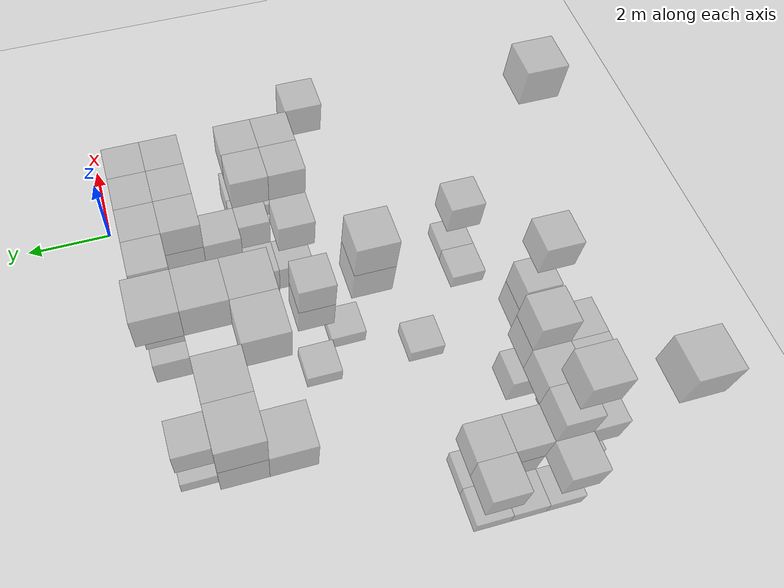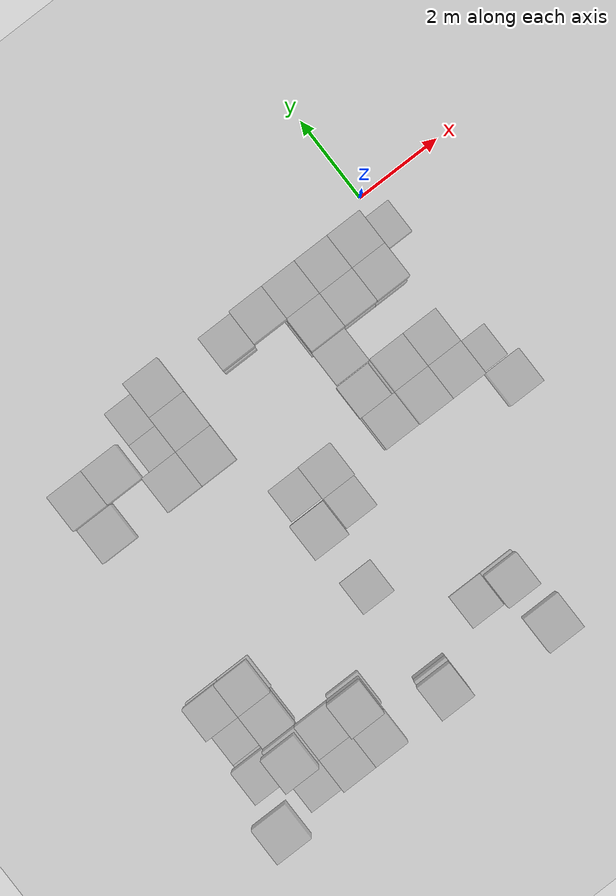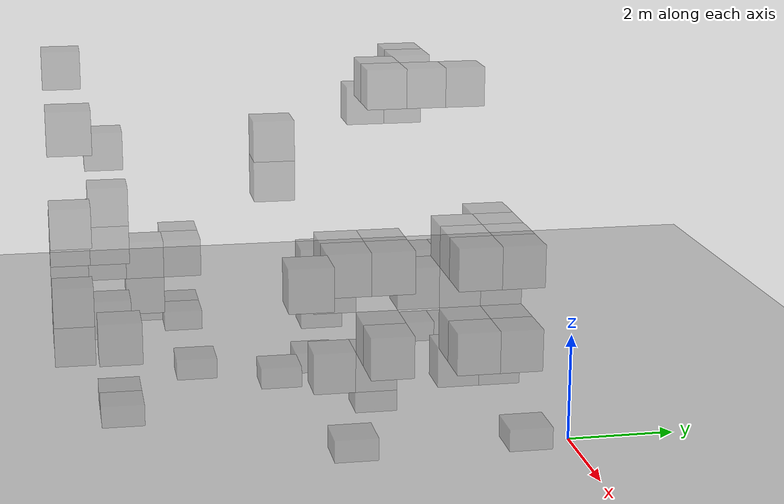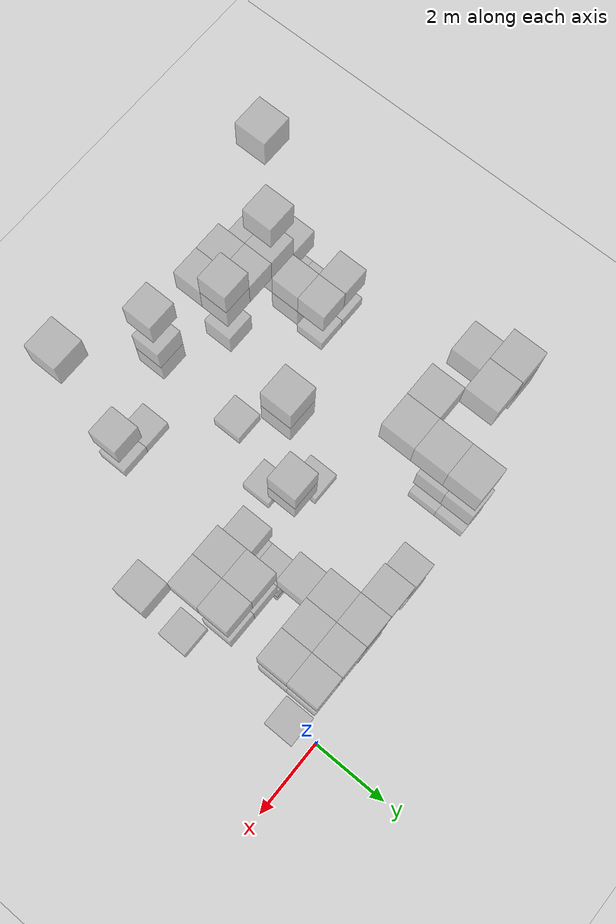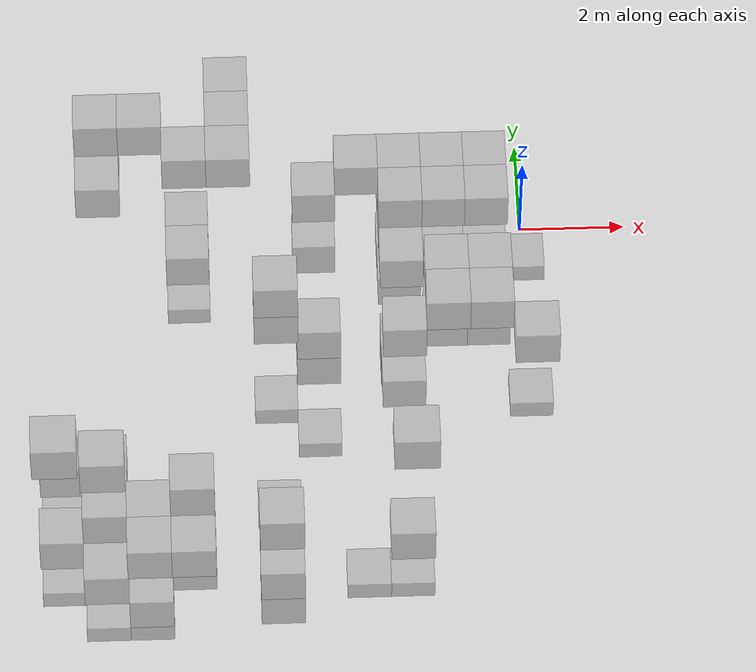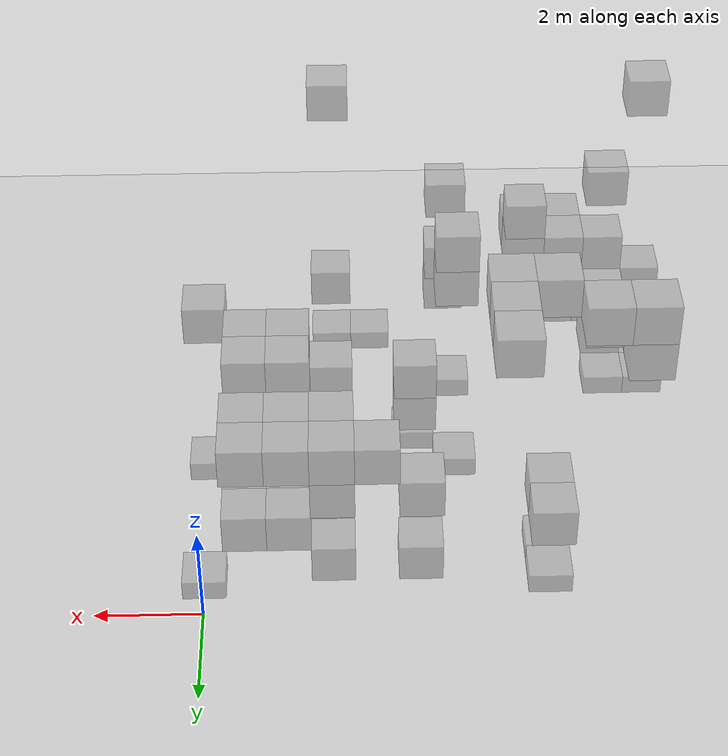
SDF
<sdf version="1.6">
 <world name="cramped_environment">
  <include><uri>model://sun</uri></include>
  <include><uri>model://ground_plane</uri></include>
  <model name="obs_1">
   <static>true</static>
   <pose>-8.00 -2.40 4.80 0 0 0</pose>
   <link name="link">
    <collision name="collision"><geometry><box><size>0.80 0.80 0.80</size></box></geometry></collision>
    <visual name="visual">
     <transparency>0.5</transparency>
     <geometry><box><size>0.80 0.80 0.80</size></box></geometry>
     <material>
      <script><name>Gazebo/Grey</name><uri>file://media/materials/scripts/gazebo.material</uri></script>
     </material>
    </visual>
   </link>
  </model>
  <model name="obs_5">
   <static>true</static>
   <pose>-6.40 -1.60 0.00 0 0 0</pose>
   <link name="link">
    <collision name="collision"><geometry><box><size>0.80 0.80 0.80</size></box></geometry></collision>
    <visual name="visual">
     <transparency>0.5</transparency>
     <geometry><box><size>0.80 0.80 0.80</size></box></geometry>
     <material>
      <script><name>Gazebo/Grey</name><uri>file://media/materials/scripts/gazebo.material</uri></script>
     </material>
    </visual>
   </link>
  </model>
  <model name="obs_6">
   <static>true</static>
   <pose>-6.40 -0.80 0.00 0 0 0</pose>
   <link name="link">
    <collision name="collision"><geometry><box><size>0.80 0.80 0.80</size></box></geometry></collision>
    <visual name="visual">
     <transparency>0.5</transparency>
     <geometry><box><size>0.80 0.80 0.80</size></box></geometry>
     <material>
      <script><name>Gazebo/Grey</name><uri>file://media/materials/scripts/gazebo.material</uri></script>
     </material>
    </visual>
   </link>
  </model>
  <model name="obs_7">
   <static>true</static>
   <pose>-8.00 -1.60 5.60 0 0 0</pose>
   <link name="link">
    <collision name="collision"><geometry><box><size>0.80 0.80 0.80</size></box></geometry></collision>
    <visual name="visual">
     <transparency>0.5</transparency>
     <geometry><box><size>0.80 0.80 0.80</size></box></geometry>
     <material>
      <script><name>Gazebo/Grey</name><uri>file://media/materials/scripts/gazebo.material</uri></script>
     </material>
    </visual>
   </link>
  </model>
  <model name="obs_8">
   <static>true</static>
   <pose>-8.00 -8.00 2.40 0 0 0</pose>
   <link name="link">
    <collision name="collision"><geometry><box><size>0.80 0.80 0.80</size></box></geometry></collision>
    <visual name="visual">
     <transparency>0.5</transparency>
     <geometry><box><size>0.80 0.80 0.80</size></box></geometry>
     <material>
      <script><name>Gazebo/Grey</name><uri>file://media/materials/scripts/gazebo.material</uri></script>
     </material>
    </visual>
   </link>
  </model>
  <model name="obs_10">
   <static>true</static>
   <pose>-6.40 -8.00 0.80 0 0 0</pose>
   <link name="link">
    <collision name="collision"><geometry><box><size>0.80 0.80 0.80</size></box></geometry></collision>
    <visual name="visual">
     <transparency>0.5</transparency>
     <geometry><box><size>0.80 0.80 0.80</size></box></geometry>
     <material>
      <script><name>Gazebo/Grey</name><uri>file://media/materials/scripts/gazebo.material</uri></script>
     </material>
    </visual>
   </link>
  </model>
  <model name="obs_11">
   <static>true</static>
   <pose>-5.60 -2.40 5.60 0 0 0</pose>
   <link name="link">
    <collision name="collision"><geometry><box><size>0.80 0.80 0.80</size></box></geometry></collision>
    <visual name="visual">
     <transparency>0.5</transparency>
     <geometry><box><size>0.80 0.80 0.80</size></box></geometry>
     <material>
      <script><name>Gazebo/Grey</name><uri>file://media/materials/scripts/gazebo.material</uri></script>
     </material>
    </visual>
   </link>
  </model>
  <model name="obs_16">
   <static>true</static>
   <pose>-4.00 -0.80 0.80 0 0 0</pose>
   <link name="link">
    <collision name="collision"><geometry><box><size>0.80 0.80 0.80</size></box></geometry></collision>
    <visual name="visual">
     <transparency>0.5</transparency>
     <geometry><box><size>0.80 0.80 0.80</size></box></geometry>
     <material>
      <script><name>Gazebo/Grey</name><uri>file://media/materials/scripts/gazebo.material</uri></script>
     </material>
    </visual>
   </link>
  </model>
  <model name="obs_17">
   <static>true</static>
   <pose>-4.80 -4.80 4.80 0 0 0</pose>
   <link name="link">
    <collision name="collision"><geometry><box><size>0.80 0.80 0.80</size></box></geometry></collision>
    <visual name="visual">
     <transparency>0.5</transparency>
     <geometry><box><size>0.80 0.80 0.80</size></box></geometry>
     <material>
      <script><name>Gazebo/Grey</name><uri>file://media/materials/scripts/gazebo.material</uri></script>
     </material>
    </visual>
   </link>
  </model>
  <model name="obs_27">
   <static>true</static>
   <pose>-1.60 -0.80 1.60 0 0 0</pose>
   <link name="link">
    <collision name="collision"><geometry><box><size>0.80 0.80 0.80</size></box></geometry></collision>
    <visual name="visual">
     <transparency>0.5</transparency>
     <geometry><box><size>0.80 0.80 0.80</size></box></geometry>
     <material>
      <script><name>Gazebo/Grey</name><uri>file://media/materials/scripts/gazebo.material</uri></script>
     </material>
    </visual>
   </link>
  </model>
  <model name="obs_28">
   <static>true</static>
   <pose>-0.80 -0.80 1.60 0 0 0</pose>
   <link name="link">
    <collision name="collision"><geometry><box><size>0.80 0.80 0.80</size></box></geometry></collision>
    <visual name="visual">
     <transparency>0.5</transparency>
     <geometry><box><size>0.80 0.80 0.80</size></box></geometry>
     <material>
      <script><name>Gazebo/Grey</name><uri>file://media/materials/scripts/gazebo.material</uri></script>
     </material>
    </visual>
   </link>
  </model>
  <model name="obs_29">
   <static>true</static>
   <pose>-1.60 -1.60 1.60 0 0 0</pose>
   <link name="link">
    <collision name="collision"><geometry><box><size>0.80 0.80 0.80</size></box></geometry></collision>
    <visual name="visual">
     <transparency>0.5</transparency>
     <geometry><box><size>0.80 0.80 0.80</size></box></geometry>
     <material>
      <script><name>Gazebo/Grey</name><uri>file://media/materials/scripts/gazebo.material</uri></script>
     </material>
    </visual>
   </link>
  </model>
  <model name="obs_30">
   <static>true</static>
   <pose>-0.80 -1.60 1.60 0 0 0</pose>
   <link name="link">
    <collision name="collision"><geometry><box><size>0.80 0.80 0.80</size></box></geometry></collision>
    <visual name="visual">
     <transparency>0.5</transparency>
     <geometry><box><size>0.80 0.80 0.80</size></box></geometry>
     <material>
      <script><name>Gazebo/Grey</name><uri>file://media/materials/scripts/gazebo.material</uri></script>
     </material>
    </visual>
   </link>
  </model>
  <model name="obs_33">
   <static>true</static>
   <pose>-8.80 -6.40 0.00 0 0 0</pose>
   <link name="link">
    <collision name="collision"><geometry><box><size>0.80 0.80 0.80</size></box></geometry></collision>
    <visual name="visual">
     <transparency>0.5</transparency>
     <geometry><box><size>0.80 0.80 0.80</size></box></geometry>
     <material>
      <script><name>Gazebo/Grey</name><uri>file://media/materials/scripts/gazebo.material</uri></script>
     </material>
    </visual>
   </link>
  </model>
  <model name="obs_35">
   <static>true</static>
   <pose>-2.40 -4.00 0.80 0 0 0</pose>
   <link name="link">
    <collision name="collision"><geometry><box><size>0.80 0.80 0.80</size></box></geometry></collision>
    <visual name="visual">
     <transparency>0.5</transparency>
     <geometry><box><size>0.80 0.80 0.80</size></box></geometry>
     <material>
      <script><name>Gazebo/Grey</name><uri>file://media/materials/scripts/gazebo.material</uri></script>
     </material>
    </visual>
   </link>
  </model>
  <model name="obs_40">
   <static>true</static>
   <pose>-2.40 -3.20 0.80 0 0 0</pose>
   <link name="link">
    <collision name="collision"><geometry><box><size>0.80 0.80 0.80</size></box></geometry></collision>
    <visual name="visual">
     <transparency>0.5</transparency>
     <geometry><box><size>0.80 0.80 0.80</size></box></geometry>
     <material>
      <script><name>Gazebo/Grey</name><uri>file://media/materials/scripts/gazebo.material</uri></script>
     </material>
    </visual>
   </link>
  </model>
  <model name="obs_49">
   <static>true</static>
   <pose>-7.20 -8.80 0.80 0 0 0</pose>
   <link name="link">
    <collision name="collision"><geometry><box><size>0.80 0.80 0.80</size></box></geometry></collision>
    <visual name="visual">
     <transparency>0.5</transparency>
     <geometry><box><size>0.80 0.80 0.80</size></box></geometry>
     <material>
      <script><name>Gazebo/Grey</name><uri>file://media/materials/scripts/gazebo.material</uri></script>
     </material>
    </visual>
   </link>
  </model>
  <model name="obs_61">
   <static>true</static>
   <pose>-6.40 -2.40 5.60 0 0 0</pose>
   <link name="link">
    <collision name="collision"><geometry><box><size>0.80 0.80 0.80</size></box></geometry></collision>
    <visual name="visual">
     <transparency>0.5</transparency>
     <geometry><box><size>0.80 0.80 0.80</size></box></geometry>
     <material>
      <script><name>Gazebo/Grey</name><uri>file://media/materials/scripts/gazebo.material</uri></script>
     </material>
    </visual>
   </link>
  </model>
  <model name="obs_62">
   <static>true</static>
   <pose>-4.80 -8.80 1.60 0 0 0</pose>
   <link name="link">
    <collision name="collision"><geometry><box><size>0.80 0.80 0.80</size></box></geometry></collision>
    <visual name="visual">
     <transparency>0.5</transparency>
     <geometry><box><size>0.80 0.80 0.80</size></box></geometry>
     <material>
      <script><name>Gazebo/Grey</name><uri>file://media/materials/scripts/gazebo.material</uri></script>
     </material>
    </visual>
   </link>
  </model>
  <model name="obs_64">
   <static>true</static>
   <pose>-6.40 -8.80 2.40 0 0 0</pose>
   <link name="link">
    <collision name="collision"><geometry><box><size>0.80 0.80 0.80</size></box></geometry></collision>
    <visual name="visual">
     <transparency>0.5</transparency>
     <geometry><box><size>0.80 0.80 0.80</size></box></geometry>
     <material>
      <script><name>Gazebo/Grey</name><uri>file://media/materials/scripts/gazebo.material</uri></script>
     </material>
    </visual>
   </link>
  </model>
  <model name="obs_67">
   <static>true</static>
   <pose>-6.40 -8.00 3.20 0 0 0</pose>
   <link name="link">
    <collision name="collision"><geometry><box><size>0.80 0.80 0.80</size></box></geometry></collision>
    <visual name="visual">
     <transparency>0.5</transparency>
     <geometry><box><size>0.80 0.80 0.80</size></box></geometry>
     <material>
      <script><name>Gazebo/Grey</name><uri>file://media/materials/scripts/gazebo.material</uri></script>
     </material>
    </visual>
   </link>
  </model>
  <model name="obs_77">
   <static>true</static>
   <pose>-2.40 -0.80 0.80 0 0 0</pose>
   <link name="link">
    <collision name="collision"><geometry><box><size>0.80 0.80 0.80</size></box></geometry></collision>
    <visual name="visual">
     <transparency>0.5</transparency>
     <geometry><box><size>0.80 0.80 0.80</size></box></geometry>
     <material>
      <script><name>Gazebo/Grey</name><uri>file://media/materials/scripts/gazebo.material</uri></script>
     </material>
    </visual>
   </link>
  </model>
  <model name="obs_78">
   <static>true</static>
   <pose>-2.40 -1.60 0.80 0 0 0</pose>
   <link name="link">
    <collision name="collision"><geometry><box><size>0.80 0.80 0.80</size></box></geometry></collision>
    <visual name="visual">
     <transparency>0.5</transparency>
     <geometry><box><size>0.80 0.80 0.80</size></box></geometry>
     <material>
      <script><name>Gazebo/Grey</name><uri>file://media/materials/scripts/gazebo.material</uri></script>
     </material>
    </visual>
   </link>
  </model>
  <model name="obs_87">
   <static>true</static>
   <pose>-8.00 -8.80 0.00 0 0 0</pose>
   <link name="link">
    <collision name="collision"><geometry><box><size>0.80 0.80 0.80</size></box></geometry></collision>
    <visual name="visual">
     <transparency>0.5</transparency>
     <geometry><box><size>0.80 0.80 0.80</size></box></geometry>
     <material>
      <script><name>Gazebo/Grey</name><uri>file://media/materials/scripts/gazebo.material</uri></script>
     </material>
    </visual>
   </link>
  </model>
  <model name="obs_120">
   <static>true</static>
   <pose>-2.40 -2.40 2.40 0 0 0</pose>
   <link name="link">
    <collision name="collision"><geometry><box><size>0.80 0.80 0.80</size></box></geometry></collision>
    <visual name="visual">
     <transparency>0.5</transparency>
     <geometry><box><size>0.80 0.80 0.80</size></box></geometry>
     <material>
      <script><name>Gazebo/Grey</name><uri>file://media/materials/scripts/gazebo.material</uri></script>
     </material>
    </visual>
   </link>
  </model>
  <model name="obs_121">
   <static>true</static>
   <pose>-2.40 -0.80 3.20 0 0 0</pose>
   <link name="link">
    <collision name="collision"><geometry><box><size>0.80 0.80 0.80</size></box></geometry></collision>
    <visual name="visual">
     <transparency>0.5</transparency>
     <geometry><box><size>0.80 0.80 0.80</size></box></geometry>
     <material>
      <script><name>Gazebo/Grey</name><uri>file://media/materials/scripts/gazebo.material</uri></script>
     </material>
    </visual>
   </link>
  </model>
  <model name="obs_122">
   <static>true</static>
   <pose>-2.40 -1.60 3.20 0 0 0</pose>
   <link name="link">
    <collision name="collision"><geometry><box><size>0.80 0.80 0.80</size></box></geometry></collision>
    <visual name="visual">
     <transparency>0.5</transparency>
     <geometry><box><size>0.80 0.80 0.80</size></box></geometry>
     <material>
      <script><name>Gazebo/Grey</name><uri>file://media/materials/scripts/gazebo.material</uri></script>
     </material>
    </visual>
   </link>
  </model>
  <model name="obs_123">
   <static>true</static>
   <pose>-2.40 -8.00 0.00 0 0 0</pose>
   <link name="link">
    <collision name="collision"><geometry><box><size>0.80 0.80 0.80</size></box></geometry></collision>
    <visual name="visual">
     <transparency>0.5</transparency>
     <geometry><box><size>0.80 0.80 0.80</size></box></geometry>
     <material>
      <script><name>Gazebo/Grey</name><uri>file://media/materials/scripts/gazebo.material</uri></script>
     </material>
    </visual>
   </link>
  </model>
  <model name="obs_124">
   <static>true</static>
   <pose>-7.20 -1.60 5.60 0 0 0</pose>
   <link name="link">
    <collision name="collision"><geometry><box><size>0.80 0.80 0.80</size></box></geometry></collision>
    <visual name="visual">
     <transparency>0.5</transparency>
     <geometry><box><size>0.80 0.80 0.80</size></box></geometry>
     <material>
      <script><name>Gazebo/Grey</name><uri>file://media/materials/scripts/gazebo.material</uri></script>
     </material>
    </visual>
   </link>
  </model>
  <model name="obs_126">
   <static>true</static>
   <pose>-7.20 -8.00 2.40 0 0 0</pose>
   <link name="link">
    <collision name="collision"><geometry><box><size>0.80 0.80 0.80</size></box></geometry></collision>
    <visual name="visual">
     <transparency>0.5</transparency>
     <geometry><box><size>0.80 0.80 0.80</size></box></geometry>
     <material>
      <script><name>Gazebo/Grey</name><uri>file://media/materials/scripts/gazebo.material</uri></script>
     </material>
    </visual>
   </link>
  </model>
  <model name="obs_132">
   <static>true</static>
   <pose>-8.00 -6.40 0.00 0 0 0</pose>
   <link name="link">
    <collision name="collision"><geometry><box><size>0.80 0.80 0.80</size></box></geometry></collision>
    <visual name="visual">
     <transparency>0.5</transparency>
     <geometry><box><size>0.80 0.80 0.80</size></box></geometry>
     <material>
      <script><name>Gazebo/Grey</name><uri>file://media/materials/scripts/gazebo.material</uri></script>
     </material>
    </visual>
   </link>
  </model>
  <model name="obs_156">
   <static>true</static>
   <pose>-1.60 -3.20 1.60 0 0 0</pose>
   <link name="link">
    <collision name="collision"><geometry><box><size>0.80 0.80 0.80</size></box></geometry></collision>
    <visual name="visual">
     <transparency>0.5</transparency>
     <geometry><box><size>0.80 0.80 0.80</size></box></geometry>
     <material>
      <script><name>Gazebo/Grey</name><uri>file://media/materials/scripts/gazebo.material</uri></script>
     </material>
    </visual>
   </link>
  </model>
  <model name="obs_158">
   <static>true</static>
   <pose>-0.80 -3.20 1.60 0 0 0</pose>
   <link name="link">
    <collision name="collision"><geometry><box><size>0.80 0.80 0.80</size></box></geometry></collision>
    <visual name="visual">
     <transparency>0.5</transparency>
     <geometry><box><size>0.80 0.80 0.80</size></box></geometry>
     <material>
      <script><name>Gazebo/Grey</name><uri>file://media/materials/scripts/gazebo.material</uri></script>
     </material>
    </visual>
   </link>
  </model>
  <model name="obs_163">
   <static>true</static>
   <pose>-8.80 -8.00 0.00 0 0 0</pose>
   <link name="link">
    <collision name="collision"><geometry><box><size>0.80 0.80 0.80</size></box></geometry></collision>
    <visual name="visual">
     <transparency>0.5</transparency>
     <geometry><box><size>0.80 0.80 0.80</size></box></geometry>
     <material>
      <script><name>Gazebo/Grey</name><uri>file://media/materials/scripts/gazebo.material</uri></script>
     </material>
    </visual>
   </link>
  </model>
  <model name="obs_174">
   <static>true</static>
   <pose>-8.00 -1.60 4.80 0 0 0</pose>
   <link name="link">
    <collision name="collision"><geometry><box><size>0.80 0.80 0.80</size></box></geometry></collision>
    <visual name="visual">
     <transparency>0.5</transparency>
     <geometry><box><size>0.80 0.80 0.80</size></box></geometry>
     <material>
      <script><name>Gazebo/Grey</name><uri>file://media/materials/scripts/gazebo.material</uri></script>
     </material>
    </visual>
   </link>
  </model>
  <model name="obs_175">
   <static>true</static>
   <pose>-8.00 -8.00 1.60 0 0 0</pose>
   <link name="link">
    <collision name="collision"><geometry><box><size>0.80 0.80 0.80</size></box></geometry></collision>
    <visual name="visual">
     <transparency>0.5</transparency>
     <geometry><box><size>0.80 0.80 0.80</size></box></geometry>
     <material>
      <script><name>Gazebo/Grey</name><uri>file://media/materials/scripts/gazebo.material</uri></script>
     </material>
    </visual>
   </link>
  </model>
  <model name="obs_181">
   <static>true</static>
   <pose>-2.40 -8.80 5.60 0 0 0</pose>
   <link name="link">
    <collision name="collision"><geometry><box><size>0.80 0.80 0.80</size></box></geometry></collision>
    <visual name="visual">
     <transparency>0.5</transparency>
     <geometry><box><size>0.80 0.80 0.80</size></box></geometry>
     <material>
      <script><name>Gazebo/Grey</name><uri>file://media/materials/scripts/gazebo.material</uri></script>
     </material>
    </visual>
   </link>
  </model>
  <model name="obs_183">
   <static>true</static>
   <pose>-8.00 -7.20 1.60 0 0 0</pose>
   <link name="link">
    <collision name="collision"><geometry><box><size>0.80 0.80 0.80</size></box></geometry></collision>
    <visual name="visual">
     <transparency>0.5</transparency>
     <geometry><box><size>0.80 0.80 0.80</size></box></geometry>
     <material>
      <script><name>Gazebo/Grey</name><uri>file://media/materials/scripts/gazebo.material</uri></script>
     </material>
    </visual>
   </link>
  </model>
  <model name="obs_184">
   <static>true</static>
   <pose>-5.60 -1.60 5.60 0 0 0</pose>
   <link name="link">
    <collision name="collision"><geometry><box><size>0.80 0.80 0.80</size></box></geometry></collision>
    <visual name="visual">
     <transparency>0.5</transparency>
     <geometry><box><size>0.80 0.80 0.80</size></box></geometry>
     <material>
      <script><name>Gazebo/Grey</name><uri>file://media/materials/scripts/gazebo.material</uri></script>
     </material>
    </visual>
   </link>
  </model>
  <model name="obs_185">
   <static>true</static>
   <pose>-5.60 -0.80 5.60 0 0 0</pose>
   <link name="link">
    <collision name="collision"><geometry><box><size>0.80 0.80 0.80</size></box></geometry></collision>
    <visual name="visual">
     <transparency>0.5</transparency>
     <geometry><box><size>0.80 0.80 0.80</size></box></geometry>
     <material>
      <script><name>Gazebo/Grey</name><uri>file://media/materials/scripts/gazebo.material</uri></script>
     </material>
    </visual>
   </link>
  </model>
  <model name="obs_187">
   <static>true</static>
   <pose>-4.80 -4.80 4.00 0 0 0</pose>
   <link name="link">
    <collision name="collision"><geometry><box><size>0.80 0.80 0.80</size></box></geometry></collision>
    <visual name="visual">
     <transparency>0.5</transparency>
     <geometry><box><size>0.80 0.80 0.80</size></box></geometry>
     <material>
      <script><name>Gazebo/Grey</name><uri>file://media/materials/scripts/gazebo.material</uri></script>
     </material>
    </visual>
   </link>
  </model>
  <model name="obs_193">
   <static>true</static>
   <pose>-3.20 -0.80 3.20 0 0 0</pose>
   <link name="link">
    <collision name="collision"><geometry><box><size>0.80 0.80 0.80</size></box></geometry></collision>
    <visual name="visual">
     <transparency>0.5</transparency>
     <geometry><box><size>0.80 0.80 0.80</size></box></geometry>
     <material>
      <script><name>Gazebo/Grey</name><uri>file://media/materials/scripts/gazebo.material</uri></script>
     </material>
    </visual>
   </link>
  </model>
  <model name="obs_194">
   <static>true</static>
   <pose>-3.20 -8.00 0.00 0 0 0</pose>
   <link name="link">
    <collision name="collision"><geometry><box><size>0.80 0.80 0.80</size></box></geometry></collision>
    <visual name="visual">
     <transparency>0.5</transparency>
     <geometry><box><size>0.80 0.80 0.80</size></box></geometry>
     <material>
      <script><name>Gazebo/Grey</name><uri>file://media/materials/scripts/gazebo.material</uri></script>
     </material>
    </visual>
   </link>
  </model>
  <model name="obs_200">
   <static>true</static>
   <pose>-4.00 -4.00 2.40 0 0 0</pose>
   <link name="link">
    <collision name="collision"><geometry><box><size>0.80 0.80 0.80</size></box></geometry></collision>
    <visual name="visual">
     <transparency>0.5</transparency>
     <geometry><box><size>0.80 0.80 0.80</size></box></geometry>
     <material>
      <script><name>Gazebo/Grey</name><uri>file://media/materials/scripts/gazebo.material</uri></script>
     </material>
    </visual>
   </link>
  </model>
  <model name="obs_212">
   <static>true</static>
   <pose>-1.60 -4.00 3.20 0 0 0</pose>
   <link name="link">
    <collision name="collision"><geometry><box><size>0.80 0.80 0.80</size></box></geometry></collision>
    <visual name="visual">
     <transparency>0.5</transparency>
     <geometry><box><size>0.80 0.80 0.80</size></box></geometry>
     <material>
      <script><name>Gazebo/Grey</name><uri>file://media/materials/scripts/gazebo.material</uri></script>
     </material>
    </visual>
   </link>
  </model>
  <model name="obs_213">
   <static>true</static>
   <pose>-0.80 -4.00 3.20 0 0 0</pose>
   <link name="link">
    <collision name="collision"><geometry><box><size>0.80 0.80 0.80</size></box></geometry></collision>
    <visual name="visual">
     <transparency>0.5</transparency>
     <geometry><box><size>0.80 0.80 0.80</size></box></geometry>
     <material>
      <script><name>Gazebo/Grey</name><uri>file://media/materials/scripts/gazebo.material</uri></script>
     </material>
    </visual>
   </link>
  </model>
  <model name="obs_215">
   <static>true</static>
   <pose>-2.40 -3.20 0.00 0 0 0</pose>
   <link name="link">
    <collision name="collision"><geometry><box><size>0.80 0.80 0.80</size></box></geometry></collision>
    <visual name="visual">
     <transparency>0.5</transparency>
     <geometry><box><size>0.80 0.80 0.80</size></box></geometry>
     <material>
      <script><name>Gazebo/Grey</name><uri>file://media/materials/scripts/gazebo.material</uri></script>
     </material>
    </visual>
   </link>
  </model>
  <model name="obs_221">
   <static>true</static>
   <pose>-7.20 -8.80 0.00 0 0 0</pose>
   <link name="link">
    <collision name="collision"><geometry><box><size>0.80 0.80 0.80</size></box></geometry></collision>
    <visual name="visual">
     <transparency>0.5</transparency>
     <geometry><box><size>0.80 0.80 0.80</size></box></geometry>
     <material>
      <script><name>Gazebo/Grey</name><uri>file://media/materials/scripts/gazebo.material</uri></script>
     </material>
    </visual>
   </link>
  </model>
  <model name="obs_222">
   <static>true</static>
   <pose>-8.80 -8.80 5.60 0 0 0</pose>
   <link name="link">
    <collision name="collision"><geometry><box><size>0.80 0.80 0.80</size></box></geometry></collision>
    <visual name="visual">
     <transparency>0.5</transparency>
     <geometry><box><size>0.80 0.80 0.80</size></box></geometry>
     <material>
      <script><name>Gazebo/Grey</name><uri>file://media/materials/scripts/gazebo.material</uri></script>
     </material>
    </visual>
   </link>
  </model>
  <model name="obs_230">
   <static>true</static>
   <pose>-6.40 -0.80 1.60 0 0 0</pose>
   <link name="link">
    <collision name="collision"><geometry><box><size>0.80 0.80 0.80</size></box></geometry></collision>
    <visual name="visual">
     <transparency>0.5</transparency>
     <geometry><box><size>0.80 0.80 0.80</size></box></geometry>
     <material>
      <script><name>Gazebo/Grey</name><uri>file://media/materials/scripts/gazebo.material</uri></script>
     </material>
    </visual>
   </link>
  </model>
  <model name="obs_231">
   <static>true</static>
   <pose>-6.40 -1.60 1.60 0 0 0</pose>
   <link name="link">
    <collision name="collision"><geometry><box><size>0.80 0.80 0.80</size></box></geometry></collision>
    <visual name="visual">
     <transparency>0.5</transparency>
     <geometry><box><size>0.80 0.80 0.80</size></box></geometry>
     <material>
      <script><name>Gazebo/Grey</name><uri>file://media/materials/scripts/gazebo.material</uri></script>
     </material>
    </visual>
   </link>
  </model>
  <model name="obs_232">
   <static>true</static>
   <pose>-8.00 -8.00 4.00 0 0 0</pose>
   <link name="link">
    <collision name="collision"><geometry><box><size>0.80 0.80 0.80</size></box></geometry></collision>
    <visual name="visual">
     <transparency>0.5</transparency>
     <geometry><box><size>0.80 0.80 0.80</size></box></geometry>
     <material>
      <script><name>Gazebo/Grey</name><uri>file://media/materials/scripts/gazebo.material</uri></script>
     </material>
    </visual>
   </link>
  </model>
  <model name="obs_233">
   <static>true</static>
   <pose>-4.80 -8.80 0.80 0 0 0</pose>
   <link name="link">
    <collision name="collision"><geometry><box><size>0.80 0.80 0.80</size></box></geometry></collision>
    <visual name="visual">
     <transparency>0.5</transparency>
     <geometry><box><size>0.80 0.80 0.80</size></box></geometry>
     <material>
      <script><name>Gazebo/Grey</name><uri>file://media/materials/scripts/gazebo.material</uri></script>
     </material>
    </visual>
   </link>
  </model>
  <model name="obs_235">
   <static>true</static>
   <pose>-6.40 -8.00 2.40 0 0 0</pose>
   <link name="link">
    <collision name="collision"><geometry><box><size>0.80 0.80 0.80</size></box></geometry></collision>
    <visual name="visual">
     <transparency>0.5</transparency>
     <geometry><box><size>0.80 0.80 0.80</size></box></geometry>
     <material>
      <script><name>Gazebo/Grey</name><uri>file://media/materials/scripts/gazebo.material</uri></script>
     </material>
    </visual>
   </link>
  </model>
  <model name="obs_243">
   <static>true</static>
   <pose>-4.00 -0.80 2.40 0 0 0</pose>
   <link name="link">
    <collision name="collision"><geometry><box><size>0.80 0.80 0.80</size></box></geometry></collision>
    <visual name="visual">
     <transparency>0.5</transparency>
     <geometry><box><size>0.80 0.80 0.80</size></box></geometry>
     <material>
      <script><name>Gazebo/Grey</name><uri>file://media/materials/scripts/gazebo.material</uri></script>
     </material>
    </visual>
   </link>
  </model>
  <model name="obs_253">
   <static>true</static>
   <pose>-1.60 -0.80 3.20 0 0 0</pose>
   <link name="link">
    <collision name="collision"><geometry><box><size>0.80 0.80 0.80</size></box></geometry></collision>
    <visual name="visual">
     <transparency>0.5</transparency>
     <geometry><box><size>0.80 0.80 0.80</size></box></geometry>
     <material>
      <script><name>Gazebo/Grey</name><uri>file://media/materials/scripts/gazebo.material</uri></script>
     </material>
    </visual>
   </link>
  </model>
  <model name="obs_254">
   <static>true</static>
   <pose>-0.80 -0.80 3.20 0 0 0</pose>
   <link name="link">
    <collision name="collision"><geometry><box><size>0.80 0.80 0.80</size></box></geometry></collision>
    <visual name="visual">
     <transparency>0.5</transparency>
     <geometry><box><size>0.80 0.80 0.80</size></box></geometry>
     <material>
      <script><name>Gazebo/Grey</name><uri>file://media/materials/scripts/gazebo.material</uri></script>
     </material>
    </visual>
   </link>
  </model>
  <model name="obs_255">
   <static>true</static>
   <pose>-1.60 -1.60 3.20 0 0 0</pose>
   <link name="link">
    <collision name="collision"><geometry><box><size>0.80 0.80 0.80</size></box></geometry></collision>
    <visual name="visual">
     <transparency>0.5</transparency>
     <geometry><box><size>0.80 0.80 0.80</size></box></geometry>
     <material>
      <script><name>Gazebo/Grey</name><uri>file://media/materials/scripts/gazebo.material</uri></script>
     </material>
    </visual>
   </link>
  </model>
  <model name="obs_256">
   <static>true</static>
   <pose>-0.80 -1.60 3.20 0 0 0</pose>
   <link name="link">
    <collision name="collision"><geometry><box><size>0.80 0.80 0.80</size></box></geometry></collision>
    <visual name="visual">
     <transparency>0.5</transparency>
     <geometry><box><size>0.80 0.80 0.80</size></box></geometry>
     <material>
      <script><name>Gazebo/Grey</name><uri>file://media/materials/scripts/gazebo.material</uri></script>
     </material>
    </visual>
   </link>
  </model>
  <model name="obs_261">
   <static>true</static>
   <pose>-8.80 -6.40 1.60 0 0 0</pose>
   <link name="link">
    <collision name="collision"><geometry><box><size>0.80 0.80 0.80</size></box></geometry></collision>
    <visual name="visual">
     <transparency>0.5</transparency>
     <geometry><box><size>0.80 0.80 0.80</size></box></geometry>
     <material>
      <script><name>Gazebo/Grey</name><uri>file://media/materials/scripts/gazebo.material</uri></script>
     </material>
    </visual>
   </link>
  </model>
  <model name="obs_263">
   <static>true</static>
   <pose>-2.40 -4.00 2.40 0 0 0</pose>
   <link name="link">
    <collision name="collision"><geometry><box><size>0.80 0.80 0.80</size></box></geometry></collision>
    <visual name="visual">
     <transparency>0.5</transparency>
     <geometry><box><size>0.80 0.80 0.80</size></box></geometry>
     <material>
      <script><name>Gazebo/Grey</name><uri>file://media/materials/scripts/gazebo.material</uri></script>
     </material>
    </visual>
   </link>
  </model>
  <model name="obs_269">
   <static>true</static>
   <pose>0.00 -4.00 0.00 0 0 0</pose>
   <link name="link">
    <collision name="collision"><geometry><box><size>0.80 0.80 0.80</size></box></geometry></collision>
    <visual name="visual">
     <transparency>0.5</transparency>
     <geometry><box><size>0.80 0.80 0.80</size></box></geometry>
     <material>
      <script><name>Gazebo/Grey</name><uri>file://media/materials/scripts/gazebo.material</uri></script>
     </material>
    </visual>
   </link>
  </model>
  <model name="obs_270">
   <static>true</static>
   <pose>0.00 -4.80 3.20 0 0 0</pose>
   <link name="link">
    <collision name="collision"><geometry><box><size>0.80 0.80 0.80</size></box></geometry></collision>
    <visual name="visual">
     <transparency>0.5</transparency>
     <geometry><box><size>0.80 0.80 0.80</size></box></geometry>
     <material>
      <script><name>Gazebo/Grey</name><uri>file://media/materials/scripts/gazebo.material</uri></script>
     </material>
    </visual>
   </link>
  </model>
  <model name="obs_276">
   <static>true</static>
   <pose>-7.20 -8.80 2.40 0 0 0</pose>
   <link name="link">
    <collision name="collision"><geometry><box><size>0.80 0.80 0.80</size></box></geometry></collision>
    <visual name="visual">
     <transparency>0.5</transparency>
     <geometry><box><size>0.80 0.80 0.80</size></box></geometry>
     <material>
      <script><name>Gazebo/Grey</name><uri>file://media/materials/scripts/gazebo.material</uri></script>
     </material>
    </visual>
   </link>
  </model>
  <model name="obs_292">
   <static>true</static>
   <pose>-4.80 -8.80 3.20 0 0 0</pose>
   <link name="link">
    <collision name="collision"><geometry><box><size>0.80 0.80 0.80</size></box></geometry></collision>
    <visual name="visual">
     <transparency>0.5</transparency>
     <geometry><box><size>0.80 0.80 0.80</size></box></geometry>
     <material>
      <script><name>Gazebo/Grey</name><uri>file://media/materials/scripts/gazebo.material</uri></script>
     </material>
    </visual>
   </link>
  </model>
  <model name="obs_297">
   <static>true</static>
   <pose>-4.00 -4.80 0.00 0 0 0</pose>
   <link name="link">
    <collision name="collision"><geometry><box><size>0.80 0.80 0.80</size></box></geometry></collision>
    <visual name="visual">
     <transparency>0.5</transparency>
     <geometry><box><size>0.80 0.80 0.80</size></box></geometry>
     <material>
      <script><name>Gazebo/Grey</name><uri>file://media/materials/scripts/gazebo.material</uri></script>
     </material>
    </visual>
   </link>
  </model>
  <model name="obs_304">
   <static>true</static>
   <pose>-2.40 -0.80 2.40 0 0 0</pose>
   <link name="link">
    <collision name="collision"><geometry><box><size>0.80 0.80 0.80</size></box></geometry></collision>
    <visual name="visual">
     <transparency>0.5</transparency>
     <geometry><box><size>0.80 0.80 0.80</size></box></geometry>
     <material>
      <script><name>Gazebo/Grey</name><uri>file://media/materials/scripts/gazebo.material</uri></script>
     </material>
    </visual>
   </link>
  </model>
  <model name="obs_305">
   <static>true</static>
   <pose>-2.40 -1.60 2.40 0 0 0</pose>
   <link name="link">
    <collision name="collision"><geometry><box><size>0.80 0.80 0.80</size></box></geometry></collision>
    <visual name="visual">
     <transparency>0.5</transparency>
     <geometry><box><size>0.80 0.80 0.80</size></box></geometry>
     <material>
      <script><name>Gazebo/Grey</name><uri>file://media/materials/scripts/gazebo.material</uri></script>
     </material>
    </visual>
   </link>
  </model>
  <model name="obs_308">
   <static>true</static>
   <pose>0.00 -0.80 0.00 0 0 0</pose>
   <link name="link">
    <collision name="collision"><geometry><box><size>0.80 0.80 0.80</size></box></geometry></collision>
    <visual name="visual">
     <transparency>0.5</transparency>
     <geometry><box><size>0.80 0.80 0.80</size></box></geometry>
     <material>
      <script><name>Gazebo/Grey</name><uri>file://media/materials/scripts/gazebo.material</uri></script>
     </material>
    </visual>
   </link>
  </model>
  <model name="obs_316">
   <static>true</static>
   <pose>-4.80 -6.40 0.00 0 0 0</pose>
   <link name="link">
    <collision name="collision"><geometry><box><size>0.80 0.80 0.80</size></box></geometry></collision>
    <visual name="visual">
     <transparency>0.5</transparency>
     <geometry><box><size>0.80 0.80 0.80</size></box></geometry>
     <material>
      <script><name>Gazebo/Grey</name><uri>file://media/materials/scripts/gazebo.material</uri></script>
     </material>
    </visual>
   </link>
  </model>
  <model name="obs_318">
   <static>true</static>
   <pose>-8.00 -8.80 1.60 0 0 0</pose>
   <link name="link">
    <collision name="collision"><geometry><box><size>0.80 0.80 0.80</size></box></geometry></collision>
    <visual name="visual">
     <transparency>0.5</transparency>
     <geometry><box><size>0.80 0.80 0.80</size></box></geometry>
     <material>
      <script><name>Gazebo/Grey</name><uri>file://media/materials/scripts/gazebo.material</uri></script>
     </material>
    </visual>
   </link>
  </model>
  <model name="obs_344">
   <static>true</static>
   <pose>-8.80 -7.20 0.00 0 0 0</pose>
   <link name="link">
    <collision name="collision"><geometry><box><size>0.80 0.80 0.80</size></box></geometry></collision>
    <visual name="visual">
     <transparency>0.5</transparency>
     <geometry><box><size>0.80 0.80 0.80</size></box></geometry>
     <material>
      <script><name>Gazebo/Grey</name><uri>file://media/materials/scripts/gazebo.material</uri></script>
     </material>
    </visual>
   </link>
  </model>
  <model name="obs_355">
   <static>true</static>
   <pose>-2.40 -8.00 1.60 0 0 0</pose>
   <link name="link">
    <collision name="collision"><geometry><box><size>0.80 0.80 0.80</size></box></geometry></collision>
    <visual name="visual">
     <transparency>0.5</transparency>
     <geometry><box><size>0.80 0.80 0.80</size></box></geometry>
     <material>
      <script><name>Gazebo/Grey</name><uri>file://media/materials/scripts/gazebo.material</uri></script>
     </material>
    </visual>
   </link>
  </model>
  <model name="obs_358">
   <static>true</static>
   <pose>-8.00 -7.20 0.80 0 0 0</pose>
   <link name="link">
    <collision name="collision"><geometry><box><size>0.80 0.80 0.80</size></box></geometry></collision>
    <visual name="visual">
     <transparency>0.5</transparency>
     <geometry><box><size>0.80 0.80 0.80</size></box></geometry>
     <material>
      <script><name>Gazebo/Grey</name><uri>file://media/materials/scripts/gazebo.material</uri></script>
     </material>
    </visual>
   </link>
  </model>
  <model name="obs_360">
   <static>true</static>
   <pose>-4.80 -4.00 0.00 0 0 0</pose>
   <link name="link">
    <collision name="collision"><geometry><box><size>0.80 0.80 0.80</size></box></geometry></collision>
    <visual name="visual">
     <transparency>0.5</transparency>
     <geometry><box><size>0.80 0.80 0.80</size></box></geometry>
     <material>
      <script><name>Gazebo/Grey</name><uri>file://media/materials/scripts/gazebo.material</uri></script>
     </material>
    </visual>
   </link>
  </model>
  <model name="obs_363">
   <static>true</static>
   <pose>-8.00 -6.40 1.60 0 0 0</pose>
   <link name="link">
    <collision name="collision"><geometry><box><size>0.80 0.80 0.80</size></box></geometry></collision>
    <visual name="visual">
     <transparency>0.5</transparency>
     <geometry><box><size>0.80 0.80 0.80</size></box></geometry>
     <material>
      <script><name>Gazebo/Grey</name><uri>file://media/materials/scripts/gazebo.material</uri></script>
     </material>
    </visual>
   </link>
  </model>
  <model name="obs_372">
   <static>true</static>
   <pose>-4.00 -4.00 1.60 0 0 0</pose>
   <link name="link">
    <collision name="collision"><geometry><box><size>0.80 0.80 0.80</size></box></geometry></collision>
    <visual name="visual">
     <transparency>0.5</transparency>
     <geometry><box><size>0.80 0.80 0.80</size></box></geometry>
     <material>
      <script><name>Gazebo/Grey</name><uri>file://media/materials/scripts/gazebo.material</uri></script>
     </material>
    </visual>
   </link>
  </model>
  <model name="obs_393">
   <static>true</static>
   <pose>-1.60 -3.20 3.20 0 0 0</pose>
   <link name="link">
    <collision name="collision"><geometry><box><size>0.80 0.80 0.80</size></box></geometry></collision>
    <visual name="visual">
     <transparency>0.5</transparency>
     <geometry><box><size>0.80 0.80 0.80</size></box></geometry>
     <material>
      <script><name>Gazebo/Grey</name><uri>file://media/materials/scripts/gazebo.material</uri></script>
     </material>
    </visual>
   </link>
  </model>
  <model name="obs_395">
   <static>true</static>
   <pose>-0.80 -3.20 3.20 0 0 0</pose>
   <link name="link">
    <collision name="collision"><geometry><box><size>0.80 0.80 0.80</size></box></geometry></collision>
    <visual name="visual">
     <transparency>0.5</transparency>
     <geometry><box><size>0.80 0.80 0.80</size></box></geometry>
     <material>
      <script><name>Gazebo/Grey</name><uri>file://media/materials/scripts/gazebo.material</uri></script>
     </material>
    </visual>
   </link>
  </model>
  <model name="obs_398">
   <static>true</static>
   <pose>-8.80 -8.00 1.60 0 0 0</pose>
   <link name="link">
    <collision name="collision"><geometry><box><size>0.80 0.80 0.80</size></box></geometry></collision>
    <visual name="visual">
     <transparency>0.5</transparency>
     <geometry><box><size>0.80 0.80 0.80</size></box></geometry>
     <material>
      <script><name>Gazebo/Grey</name><uri>file://media/materials/scripts/gazebo.material</uri></script>
     </material>
    </visual>
   </link>
  </model>
 </world>
</sdf>
